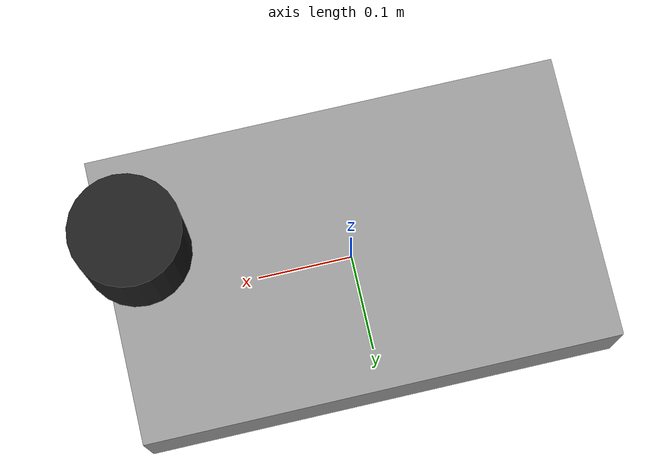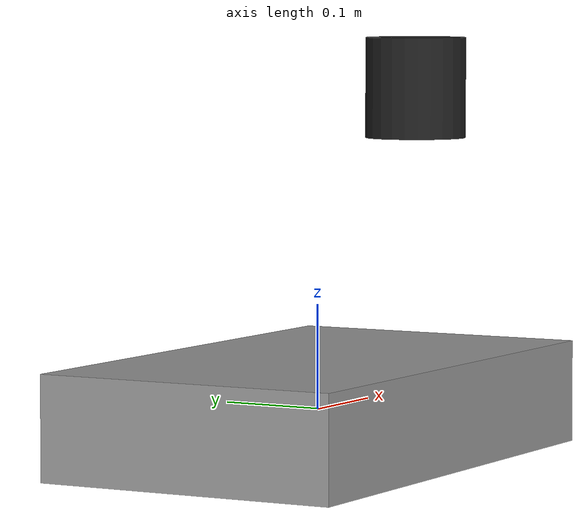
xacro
<?xml version="1.0"?>
<robot xmlns:xacro="http://ros.org/wiki/xacro" name="my_robot">

  <!-- Base Footprint -->
  <link name="base_footprint"/>

  <!-- Base Link -->
  <link name="base_link">
    <visual>
      <geometry>
        <box size="0.5 0.3 0.1"/>
      </geometry>
      <material name="grey"/>
    </visual>
  </link>

  <!-- Laser Frame -->
  <link name="laser">
    <visual>
      <geometry>
        <cylinder radius="0.05" length="0.1"/>
      </geometry>
      <material name="black"/>
    </visual>
  </link>

  <!-- IMU Frame -->
  <link name="imu_link"/>

  <!-- Fixed Joint: base_footprint to base_link -->
  <joint name="base_footprint_joint" type="fixed">
    <parent link="base_footprint"/>
    <child link="base_link"/>
    <origin xyz="0 0 0" rpy="0 0 0"/>
  </joint>

  <!-- Fixed Joint: base_link to laser -->
  <joint name="laser_joint" type="fixed">
    <parent link="base_link"/>
    <child link="laser"/>
    <origin xyz="0.2 0 0.3" rpy="0 0 0"/>
  </joint>

  <!-- Fixed Joint: base_link to imu_link -->
  <joint name="imu_joint" type="fixed">
    <parent link="base_link"/>
    <child link="imu_link"/>
    <origin xyz="0 0 0.3" rpy="0 0 0"/>
  </joint>
</robot>
